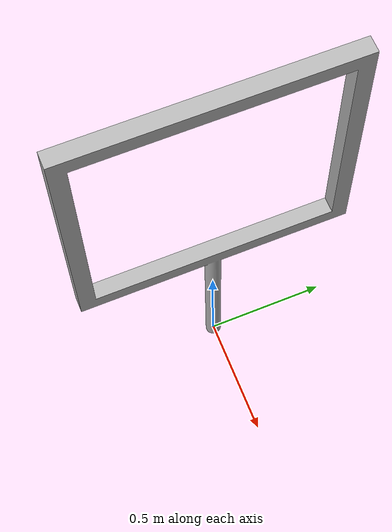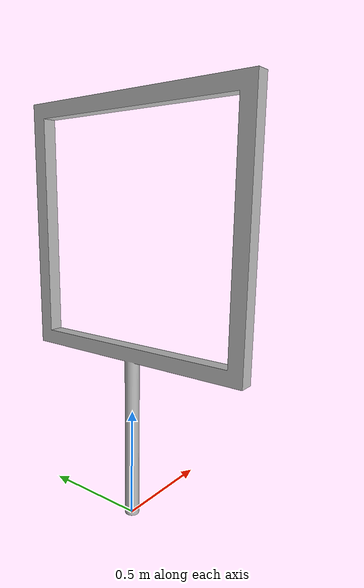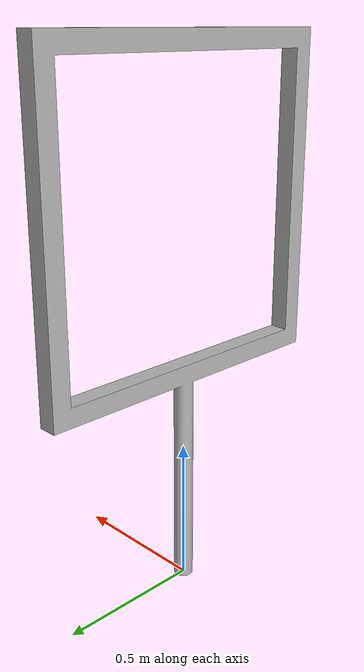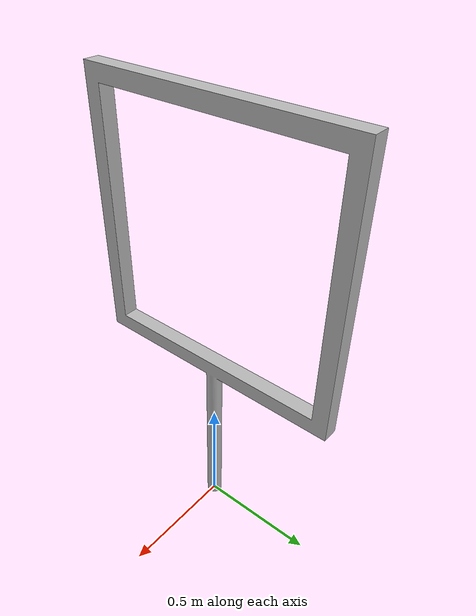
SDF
<?xml version="1.0"?>
<sdf version="1.5">
    <model name="frame_2">
        <static>true</static>
        <link name="link">
            <collision name="collision1">
                <pose>0 0 0 0 0 0</pose>
                <geometry>
                    <mesh>
                        <uri>model://frame_2/meshes/frame_2.dae</uri>
                    </mesh>
                </geometry>
            </collision>
            <visual name="visual1">

              <pose>0 0 0 0 0 0</pose>
              <geometry>
              <mesh>
                 <uri>model://frame_2/meshes/frame_2.dae</uri>
              </mesh>
              </geometry>
             </visual>
        </link>
    </model>
</sdf>
